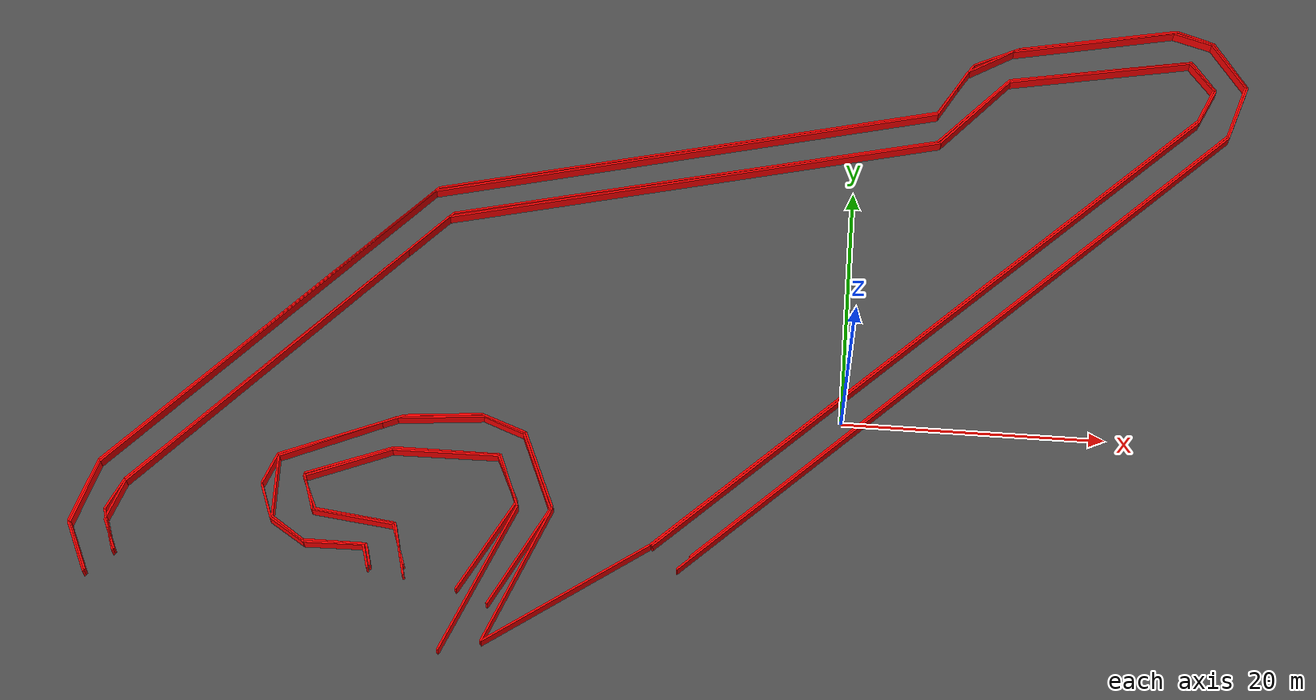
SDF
<sdf version="1.6">
 <world name="track_world">
  <model name="ground_plane">
   <static>true</static>
   <link name="link">
    <collision name="collision">
     <geometry><plane><normal>0 0 1</normal><size>1000 1000</size></plane></geometry>
    </collision>
    <visual name="visual">
     <geometry><plane><normal>0 0 1</normal><size>1000 1000</size></plane></geometry>
     <material><ambient>0.3 0.3 0.3 1</ambient><diffuse>0.3 0.3 0.3 1</diffuse></material>
    </visual>
   </link>
  </model>
  <model name="wall_0">
   <static>true</static>
   <pose>27.159355830790837 36.11916817799599 0.5 0 0 2.8273607545054484</pose>
   <link name="link">
    <visual name="visual">
     <geometry><box><size>3.1721261090316166 0.15 1.0</size></box></geometry>
     <material><ambient>1 0 0 1</ambient><diffuse>1 0 0 1</diffuse></material>
    </visual>
    <collision name="collision">
     <geometry><box><size>3.1721261090316166 0.15 1.0</size></box></geometry>
    </collision>
   </link>
  </model>
  <model name="wall_1">
   <static>true</static>
   <pose>19.27796583079084 35.327258177995986 0.5 0 0 -2.94305943780296</pose>
   <link name="link">
    <visual name="visual">
     <geometry><box><size>13.001366777335367 0.15 1.0</size></box></geometry>
     <material><ambient>1 0 0 1</ambient><diffuse>1 0 0 1</diffuse></material>
    </visual>
    <collision name="collision">
     <geometry><box><size>13.001366777335367 0.15 1.0</size></box></geometry>
    </collision>
   </link>
  </model>
  <model name="wall_2">
   <static>true</static>
   <pose>11.057185830790843 33.140078177995974 0.5 0 0 -2.6861415823389008</pose>
   <link name="link">
    <visual name="visual">
     <geometry><box><size>4.11505785412551 0.15 1.0</size></box></geometry>
     <material><ambient>1 0 0 1</ambient><diffuse>1 0 0 1</diffuse></material>
    </visual>
    <collision name="collision"><geometry><box><size>4.11505785412551 0.15 1.0</size></box></geometry></collision>
   </link>
  </model>
  <model name="wall_3">
   <static>true</static>
   <pose>7.814125830790843 29.897018177995974 0.5 0 0 -2.10884053462052</pose>
   <link name="link">
    <visual name="visual">
     <geometry><box><size>5.445407567225796 0.15 1.0</size></box></geometry>
     <material><ambient>1 0 0 1</ambient><diffuse>1 0 0 1</diffuse></material>
    </visual>
    <collision name="collision">
     <geometry><box><size>5.445407567225796 0.15 1.0</size></box></geometry>
    </collision>
   </link>
  </model>
  <model name="wall_4">
   <static>true</static>
   <pose>-13.190344169209155 22.69440817799598 0.5 0 0 -2.8984247625897464</pose>
   <link name="link">
    <visual name="visual">
     <geometry><box><size>40.40717562552968 0.15 1.0</size></box></geometry>
     <material><ambient>1 0 0 1</ambient><diffuse>1 0 0 1</diffuse></material>
    </visual>
    <collision name="collision">
     <geometry><box><size>40.40717562552968 0.15 1.0</size></box></geometry>
    </collision>
   </link>
  </model>
  <model name="wall_5">
   <static>true</static>
   <pose>-44.338804169209155 5.234678177995988 0.5 0 0 -2.3124723715907574</pose>
   <link name="link">
    <visual name="visual">
     <geometry><box><size>34.163844805126956 0.15 1.0</size></box></geometry>
     <material><ambient>1 0 0 1</ambient><diffuse>1 0 0 1</diffuse></material>
    </visual>
    <collision name="collision">
     <geometry><box><size>34.163844805126956 0.15 1.0</size></box></geometry>
    </collision>
   </link>
  </model>
  <model name="wall_6">
   <static>true</static>
   <pose>-56.632264169209165 -9.924741822004016 0.5 0 0 -1.8568477685122147</pose>
   <link name="link">
    <visual name="visual">
     <geometry><box><size>5.345783219847218 0.15 1.0</size></box></geometry>
     <material><ambient>1 0 0 1</ambient><diffuse>1 0 0 1</diffuse></material>
    </visual>
    <collision name="collision">
     <geometry><box><size>5.345783219847218 0.15 1.0</size></box></geometry>
    </collision>
   </link>
  </model>
  <model name="wall_7">
   <static>true</static>
   <pose>-56.48142416920916 -14.449941822004014 0.5 0 0 -1.1383885512243563</pose>
   <link name="link">
    <visual name="visual">
     <geometry><box><size>4.319400258369202 0.15 1.0</size></box></geometry>
     <material><ambient>1 0 0 1</ambient><diffuse>1 0 0 1</diffuse></material>
    </visual>
    <collision name="collision">
     <geometry><box><size>4.319400258369202 0.15 1.0</size></box></geometry>
    </collision>
   </link>
  </model>
  <model name="wall_26">
   <static>true</static>
   <pose>-32.42244416920916 -12.941541822004012 0.5 0 0 1.8244704229335402</pose>
   <link name="link">
    <visual name="visual">
     <geometry><box><size>4.207327531438446 0.15 1.0</size></box></geometry>
     <material><ambient>1 0 0 1</ambient><diffuse>1 0 0 1</diffuse></material>
    </visual>
    <collision name="collision">
     <geometry><box><size>4.207327531438446 0.15 1.0</size></box></geometry>
    </collision>
   </link>
  </model>
  <model name="wall_27">
   <static>true</static>
   <pose>-36.00489416920916 -10.528101822004018 0.5 0 0 3.0187574147118985</pose>
   <link name="link">
    <visual name="visual">
     <geometry><box><size>6.155399499658817 0.15 1.0</size></box></geometry>
     <material><ambient>1 0 0 1</ambient><diffuse>1 0 0 1</diffuse></material>
    </visual>
    <collision name="collision">
     <geometry><box><size>6.155399499658817 0.15 1.0</size></box></geometry>
    </collision>
   </link>
  </model>
  <model name="wall_28">
   <static>true</static>
   <pose>-39.662764169209154 -8.868861822004014 0.5 0 0 2.01063890961063</pose>
   <link name="link">
    <visual name="visual">
     <geometry><box><size>2.834026301359966 0.15 1.0</size></box></geometry>
     <material><ambient>1 0 0 1</ambient><diffuse>1 0 0 1</diffuse></material>
    </visual>
    <collision name="collision">
     <geometry><box><size>2.834026301359966 0.15 1.0</size></box></geometry>
    </collision>
   </link>
  </model>
  <model name="wall_29">
   <static>true</static>
   <pose>-37.060774169209154 -6.266871822004013 0.5 0 0 0.3906070436976856</pose>
   <link name="link">
    <visual name="visual">
     <geometry><box><size>6.932899146821619 0.15 1.0</size></box></geometry>
     <material><ambient>1 0 0 1</ambient><diffuse>1 0 0 1</diffuse></material>
    </visual>
    <collision name="collision">
     <geometry><box><size>6.932899146821619 0.15 1.0</size></box></geometry>
    </collision>
   </link>
  </model>
  <model name="wall_30">
   <static>true</static>
   <pose>-29.820454169209157 -4.909311822004014 0.5 0 0 0.009345522307490922</pose>
   <link name="link">
    <visual name="visual">
     <geometry><box><size>8.070292422211233 0.15 1.0</size></box></geometry>
     <material><ambient>1 0 0 1</ambient><diffuse>1 0 0 1</diffuse></material>
    </visual>
    <collision name="collision">
     <geometry><box><size>8.070292422211233 0.15 1.0</size></box></geometry>
    </collision>
   </link>
  </model>
  <model name="wall_31">
   <static>true</static>
   <pose>-24.91815416920916 -6.681681822004009 0.5 0 0 -1.1239538583091344</pose>
   <link name="link">
    <visual name="visual">
     <geometry><box><size>4.014299906733422 0.15 1.0</size></box></geometry>
     <material><ambient>1 0 0 1</ambient><diffuse>1 0 0 1</diffuse></material>
    </visual>
    <collision name="collision">
     <geometry><box><size>4.014299906733422 0.15 1.0</size></box></geometry>
    </collision>
   </link>
  </model>
  <model name="wall_32">
   <static>true</static>
   <pose>-25.974034169209162 -12.149631822004011 0.5 0 0 -2.0548492664822398</pose>
   <link name="link">
    <visual name="visual">
     <geometry><box><size>8.26528877680629 0.15 1.0</size></box></geometry>
     <material><ambient>1 0 0 1</ambient><diffuse>1 0 0 1</diffuse></material>
    </visual>
    <collision name="collision"><geometry><box><size>8.26528877680629 0.15 1.0</size></box></geometry></collision>
   </link>
  </model>
  <model name="wall_37">
   <static>true</static>
   <pose>9.02084583079084 6.893918177995985 0.5 0 0 0.7677910859479851</pose>
   <link name="link">
    <visual name="visual">
     <geometry><box><size>57.55198350966194 0.15 1.0</size></box></geometry>
     <material><ambient>1 0 0 1</ambient><diffuse>1 0 0 1</diffuse></material>
    </visual>
    <collision name="collision">
     <geometry><box><size>57.55198350966194 0.15 1.0</size></box></geometry>
    </collision>
   </link>
  </model>
  <model name="wall_38">
   <static>true</static>
   <pose>30.515545830790835 29.25594817799599 0.5 0 0 1.249045772398257</pose>
   <link name="link">
    <visual name="visual">
     <geometry><box><size>5.008478603727887 0.15 1.0</size></box></geometry>
     <material><ambient>1 0 0 1</ambient><diffuse>1 0 0 1</diffuse></material>
    </visual>
    <collision name="collision">
     <geometry><box><size>5.008478603727887 0.15 1.0</size></box></geometry>
    </collision>
   </link>
  </model>
  <model name="wall_39">
   <static>true</static>
   <pose>29.987605830790834 33.630308177995985 0.5 0 0 2.1544321458720583</pose>
   <link name="link">
    <visual name="visual">
     <geometry><box><size>4.790209139233882 0.15 1.0</size></box></geometry>
     <material><ambient>1 0 0 1</ambient><diffuse>1 0 0 1</diffuse></material>
    </visual>
    <collision name="collision">
     <geometry><box><size>4.790209139233882 0.15 1.0</size></box></geometry>
    </collision>
   </link>
  </model>
  <model name="wall_40">
   <static>true</static>
   <pose>29.83676583079084 33.630308177995985 0.5 0 0 -0.9693416199346254</pose>
   <link name="link">
    <visual name="visual">
     <geometry><box><size>4.665079088975899 0.15 1.0</size></box></geometry>
     <material><ambient>1 0 0 1</ambient><diffuse>1 0 0 1</diffuse></material>
    </visual>
    <collision name="collision">
     <geometry><box><size>4.665079088975899 0.15 1.0</size></box></geometry>
    </collision>
   </link>
  </model>
  <model name="wall_41">
   <static>true</static>
   <pose>30.402415830790844 29.369078177995974 0.5 0 0 -1.8828384483574288</pose>
   <link name="link">
    <visual name="visual">
     <geometry><box><size>4.913310558228534 0.15 1.0</size></box></geometry>
     <material><ambient>1 0 0 1</ambient><diffuse>1 0 0 1</diffuse></material>
    </visual>
    <collision name="collision">
     <geometry><box><size>4.913310558228534 0.15 1.0</size></box></geometry>
    </collision>
   </link>
  </model>
  <model name="wall_42">
   <static>true</static>
   <pose>9.435655830790843 7.49727817799598 0.5 0 0 -2.3732706290907037</pose>
   <link name="link">
    <visual name="visual">
     <geometry><box><size>56.21800931523634 0.15 1.0</size></box></geometry>
     <material><ambient>1 0 0 1</ambient><diffuse>1 0 0 1</diffuse></material>
    </visual>
    <collision name="collision">
     <geometry><box><size>56.21800931523634 0.15 1.0</size></box></geometry>
    </collision>
   </link>
  </model>
  <model name="wall_46">
   <static>true</static>
   <pose>-26.35113416920916 -14.751621822004012 0.5 0 0 1.1869787035063275</pose>
   <link name="link">
    <visual name="visual">
     <geometry><box><size>12.688728580988732 0.15 1.0</size></box></geometry>
     <material><ambient>1 0 0 1</ambient><diffuse>1 0 0 1</diffuse></material>
    </visual>
    <collision name="collision">
     <geometry><box><size>12.688728580988732 0.15 1.0</size></box></geometry>
    </collision>
   </link>
  </model>
  <model name="wall_47">
   <static>true</static>
   <pose>-24.805024169209155 -6.832521822004011 0.5 0 0 1.9576720445259248</pose>
   <link name="link">
    <visual name="visual">
     <geometry><box><size>4.397703919092316 0.15 1.0</size></box></geometry>
     <material><ambient>1 0 0 1</ambient><diffuse>1 0 0 1</diffuse></material>
    </visual>
    <collision name="collision">
     <geometry><box><size>4.397703919092316 0.15 1.0</size></box></geometry>
    </collision>
   </link>
  </model>
  <model name="wall_48">
   <static>true</static>
   <pose>-29.70732416920916 -4.796181822004016 0.5 0 0 3.141592653589793</pose>
   <link name="link">
    <visual name="visual">
     <geometry><box><size>8.14536000000001 0.15 1.0</size></box></geometry>
     <material><ambient>1 0 0 1</ambient><diffuse>1 0 0 1</diffuse></material>
    </visual>
    <collision name="collision"><geometry><box><size>8.14536000000001 0.15 1.0</size></box></geometry></collision>
   </link>
  </model>
  <model name="wall_49">
   <static>true</static>
   <pose>-37.023064169209164 -6.078321822004014 0.5 0 0 -2.76510231914327</pose>
   <link name="link">
    <visual name="visual">
     <geometry><box><size>6.974617163171029 0.15 1.0</size></box></geometry>
     <material><ambient>1 0 0 1</ambient><diffuse>1 0 0 1</diffuse></material>
    </visual>
    <collision name="collision">
     <geometry><box><size>6.974617163171029 0.15 1.0</size></box></geometry>
    </collision>
   </link>
  </model>
  <model name="wall_50">
   <static>true</static>
   <pose>-39.77589416920915 -8.793441822004013 0.5 0 0 -1.2411719193741537</pose>
   <link name="link">
    <visual name="visual">
     <geometry><box><size>3.0290309561310216 0.15 1.0</size></box></geometry>
     <material><ambient>1 0 0 1</ambient><diffuse>1 0 0 1</diffuse></material>
    </visual>
    <collision name="collision">
     <geometry><box><size>3.0290309561310216 0.15 1.0</size></box></geometry>
    </collision>
   </link>
  </model>
  <model name="wall_51">
   <static>true</static>
   <pose>-36.19344416920916 -10.603521822004012 0.5 0 0 -0.12135200057076334</pose>
   <link name="link">
    <visual name="visual">
     <geometry><box><size>6.230258080818157 0.15 1.0</size></box></geometry>
     <material><ambient>1 0 0 1</ambient><diffuse>1 0 0 1</diffuse></material>
    </visual>
    <collision name="collision">
     <geometry><box><size>6.230258080818157 0.15 1.0</size></box></geometry>
    </collision>
   </link>
  </model>
  <model name="wall_52">
   <static>true</static>
   <pose>-32.53557416920916 -12.564441822004014 0.5 0 0 -1.227772386374195</pose>
   <link name="link">
    <visual name="visual">
     <geometry><box><size>3.363596714768289 0.15 1.0</size></box></geometry>
     <material><ambient>1 0 0 1</ambient><diffuse>1 0 0 1</diffuse></material>
    </visual>
    <collision name="collision">
     <geometry><box><size>3.363596714768289 0.15 1.0</size></box></geometry>
    </collision>
   </link>
  </model>
  <model name="wall_68">
   <static>true</static>
   <pose>-56.368294169209165 -14.412231822004017 0.5 0 0 2.009655625758402</pose>
   <link name="link">
    <visual name="visual">
     <geometry><box><size>4.08244496006989 0.15 1.0</size></box></geometry>
     <material><ambient>1 0 0 1</ambient><diffuse>1 0 0 1</diffuse></material>
    </visual>
    <collision name="collision"><geometry><box><size>4.08244496006989 0.15 1.0</size></box></geometry></collision>
   </link>
  </model>
  <model name="wall_69">
   <static>true</static>
   <pose>-56.51913416920916 -10.037871822004014 0.5 0 0 1.2944690518198312</pose>
   <link name="link">
    <visual name="visual">
     <geometry><box><size>5.2523952193261305 0.15 1.0</size></box></geometry>
     <material><ambient>1 0 0 1</ambient><diffuse>1 0 0 1</diffuse></material>
    </visual>
    <collision name="collision">
     <geometry><box><size>5.2523952193261305 0.15 1.0</size></box></geometry>
    </collision>
   </link>
  </model>
  <model name="wall_70">
   <static>true</static>
   <pose>-44.414224169209156 5.008418177995985 0.5 0 0 0.8326815064915635</pose>
   <link name="link">
    <visual name="visual">
     <geometry><box><size>33.84904719337312 0.15 1.0</size></box></geometry>
     <material><ambient>1 0 0 1</ambient><diffuse>1 0 0 1</diffuse></material>
    </visual>
    <collision name="collision">
     <geometry><box><size>33.84904719337312 0.15 1.0</size></box></geometry>
    </collision>
   </link>
  </model>
  <model name="wall_71">
   <static>true</static>
   <pose>-13.303474169209153 22.468148177995985 0.5 0 0 0.2454285056516268</pose>
   <link name="link">
    <visual name="visual">
     <geometry><box><size>40.66320201012213 0.15 1.0</size></box></geometry>
     <material><ambient>1 0 0 1</ambient><diffuse>1 0 0 1</diffuse></material>
    </visual>
    <collision name="collision">
     <geometry><box><size>40.66320201012213 0.15 1.0</size></box></geometry>
    </collision>
   </link>
  </model>
  <model name="wall_72">
   <static>true</static>
   <pose>7.587865830790847 29.482208177995986 0.5 0 0 1.0575440539286356</pose>
   <link name="link">
    <visual name="visual">
     <geometry><box><size>4.761624841417055 0.15 1.0</size></box></geometry>
     <material><ambient>1 0 0 1</ambient><diffuse>1 0 0 1</diffuse></material>
    </visual>
    <collision name="collision">
     <geometry><box><size>4.761624841417055 0.15 1.0</size></box></geometry>
    </collision>
   </link>
  </model>
  <model name="wall_73">
   <static>true</static>
   <pose>10.566955830790846 32.64984817799599 0.5 0 0 0.543477594713046</pose>
   <link name="link">
    <visual name="visual">
     <geometry><box><size>4.229576193662911 0.15 1.0</size></box></geometry>
     <material><ambient>1 0 0 1</ambient><diffuse>1 0 0 1</diffuse></material>
    </visual>
    <collision name="collision">
     <geometry><box><size>4.229576193662911 0.15 1.0</size></box></geometry>
    </collision>
   </link>
  </model>
  <model name="wall_74">
   <static>true</static>
   <pose>18.900865830790842 35.10099817799599 0.5 0 0 0.20516454893532557</pose>
   <link name="link">
    <visual name="visual">
     <geometry><box><size>13.327164292901912 0.15 1.0</size></box></geometry>
     <material><ambient>1 0 0 1</ambient><diffuse>1 0 0 1</diffuse></material>
    </visual>
    <collision name="collision">
     <geometry><box><size>13.327164292901912 0.15 1.0</size></box></geometry>
    </collision>
   </link>
  </model>
  <model name="wall_75">
   <static>true</static>
   <pose>26.970805830790837 36.00603817799599 0.5 0 0 -0.284730438522708</pose>
   <link name="link">
    <visual name="visual">
     <geometry><box><size>3.2219438123592345 0.15 1.0</size></box></geometry>
     <material><ambient>1 0 0 1</ambient><diffuse>1 0 0 1</diffuse></material>
    </visual>
    <collision name="collision">
     <geometry><box><size>3.2219438123592345 0.15 1.0</size></box></geometry>
    </collision>
   </link>
  </model>
  <model name="wall_76">
   <static>true</static>
   <pose>19.504225830790837 32.38587817799599 0.5 0 0 -2.9590328004588855</pose>
   <link name="link">
    <visual name="visual">
     <geometry><box><size>14.955426581157763 0.15 1.0</size></box></geometry>
     <material><ambient>1 0 0 1</ambient><diffuse>1 0 0 1</diffuse></material>
    </visual>
    <collision name="collision">
     <geometry><box><size>14.955426581157763 0.15 1.0</size></box></geometry>
    </collision>
   </link>
  </model>
  <model name="wall_77">
   <static>true</static>
   <pose>9.322525830790838 27.936098177995987 0.5 0 0 -2.311638012056135</pose>
   <link name="link">
    <visual name="visual">
     <geometry><box><size>8.381127034212037 0.15 1.0</size></box></geometry>
     <material><ambient>1 0 0 1</ambient><diffuse>1 0 0 1</diffuse></material>
    </visual>
    <collision name="collision">
     <geometry><box><size>8.381127034212037 0.15 1.0</size></box></geometry>
    </collision>
   </link>
  </model>
  <model name="wall_78">
   <static>true</static>
   <pose>-12.436144169209157 20.24325817799599 0.5 0 0 -2.903186665767688</pose>
   <link name="link">
    <visual name="visual">
     <geometry><box><size>38.96288006607314 0.15 1.0</size></box></geometry>
     <material><ambient>1 0 0 1</ambient><diffuse>1 0 0 1</diffuse></material>
    </visual>
    <collision name="collision">
     <geometry><box><size>38.96288006607314 0.15 1.0</size></box></geometry>
    </collision>
   </link>
  </model>
  <model name="wall_79">
   <static>true</static>
   <pose>-42.528724169209156 3.424598177995989 0.5 0 0 -2.3110638651375957</pose>
   <link name="link">
    <visual name="visual">
     <geometry><box><size>33.098297074453846 0.15 1.0</size></box></geometry>
     <material><ambient>1 0 0 1</ambient><diffuse>1 0 0 1</diffuse></material>
    </visual>
    <collision name="collision">
     <geometry><box><size>33.098297074453846 0.15 1.0</size></box></geometry>
    </collision>
   </link>
  </model>
  <model name="wall_80">
   <static>true</static>
   <pose>-54.25653416920916 -10.075581822004011 0.5 0 0 -1.9862884227357887</pose>
   <link name="link">
    <visual name="visual">
     <geometry><box><size>2.8027435859171974 0.15 1.0</size></box></geometry>
     <material><ambient>1 0 0 1</ambient><diffuse>1 0 0 1</diffuse></material>
    </visual>
    <collision name="collision">
     <geometry><box><size>2.8027435859171974 0.15 1.0</size></box></geometry>
    </collision>
   </link>
  </model>
  <model name="wall_81">
   <static>true</static>
   <pose>-54.25653416920916 -12.97925182200401 0.5 0 0 -1.2351577764672865</pose>
   <link name="link">
    <visual name="visual">
     <geometry><box><size>3.434716560882427 0.15 1.0</size></box></geometry>
     <material><ambient>1 0 0 1</ambient><diffuse>1 0 0 1</diffuse></material>
    </visual>
    <collision name="collision">
     <geometry><box><size>3.434716560882427 0.15 1.0</size></box></geometry>
    </collision>
   </link>
  </model>
  <model name="wall_98">
   <static>true</static>
   <pose>-34.685044169209164 -13.544901822004014 0.5 0 0 1.8370483759458223</pose>
   <link name="link">
    <visual name="visual">
     <geometry><box><size>1.7198406112195366 0.15 1.0</size></box></geometry>
     <material><ambient>1 0 0 1</ambient><diffuse>1 0 0 1</diffuse></material>
    </visual>
    <collision name="collision">
     <geometry><box><size>1.7198406112195366 0.15 1.0</size></box></geometry>
    </collision>
   </link>
  </model>
  <model name="wall_99">
   <static>true</static>
   <pose>-37.287034169209164 -12.715281822004016 0.5 0 0 3.141592653589793</pose>
   <link name="link">
    <visual name="visual">
     <geometry><box><size>4.751460000000002 0.15 1.0</size></box></geometry>
     <material><ambient>1 0 0 1</ambient><diffuse>1 0 0 1</diffuse></material>
    </visual>
    <collision name="collision">
     <geometry><box><size>4.751460000000002 0.15 1.0</size></box></geometry>
    </collision>
   </link>
  </model>
  <model name="wall_100">
   <static>true</static>
   <pose>-40.94490416920916 -11.847951822004013 0.5 0 0 2.546833396106438</pose>
   <link name="link">
    <visual name="visual">
     <geometry><box><size>3.095896838397559 0.15 1.0</size></box></geometry>
     <material><ambient>1 0 0 1</ambient><diffuse>1 0 0 1</diffuse></material>
    </visual>
    <collision name="collision">
     <geometry><box><size>3.095896838397559 0.15 1.0</size></box></geometry>
    </collision>
   </link>
  </model>
  <model name="wall_101">
   <static>true</static>
   <pose>-42.30246416920916 -8.529471822004012 0.5 0 0 1.6015558528653664</pose>
   <link name="link">
    <visual name="visual">
     <geometry><box><size>4.904620066386383 0.15 1.0</size></box></geometry>
     <material><ambient>1 0 0 1</ambient><diffuse>1 0 0 1</diffuse></material>
    </visual>
    <collision name="collision">
     <geometry><box><size>4.904620066386383 0.15 1.0</size></box></geometry>
    </collision>
   </link>
  </model>
  <model name="wall_102">
   <static>true</static>
   <pose>-38.116654169209156 -4.192821822004014 0.5 0 0 0.41658094568479526</pose>
   <link name="link">
    <visual name="visual">
     <geometry><box><size>9.319483110752444 0.15 1.0</size></box></geometry>
     <material><ambient>1 0 0 1</ambient><diffuse>1 0 0 1</diffuse></material>
    </visual>
    <collision name="collision">
     <geometry><box><size>9.319483110752444 0.15 1.0</size></box></geometry>
    </collision>
   </link>
  </model>
  <model name="wall_103">
   <static>true</static>
   <pose>-30.536944169209157 -2.0056418220040158 0.5 0 0 0.09065988720074435</pose>
   <link name="link">
    <visual name="visual">
     <geometry><box><size>6.664329023330107 0.15 1.0</size></box></geometry>
     <material><ambient>1 0 0 1</ambient><diffuse>1 0 0 1</diffuse></material>
    </visual>
    <collision name="collision">
     <geometry><box><size>6.664329023330107 0.15 1.0</size></box></geometry>
    </collision>
   </link>
  </model>
  <model name="wall_104">
   <static>true</static>
   <pose>-25.63464416920916 -2.3073218220040133 0.5 0 0 -0.36397895650964224</pose>
   <link name="link">
    <visual name="visual">
     <geometry><box><size>3.3897074103821887 0.15 1.0</size></box></geometry>
     <material><ambient>1 0 0 1</ambient><diffuse>1 0 0 1</diffuse></material>
    </visual>
    <collision name="collision">
     <geometry><box><size>3.3897074103821887 0.15 1.0</size></box></geometry>
    </collision>
   </link>
  </model>
  <model name="wall_105">
   <static>true</static>
   <pose>-22.76868416920916 -5.927481822004012 0.5 0 0 -1.168925679354439</pose>
   <link name="link">
    <visual name="visual">
     <geometry><box><size>6.555902750834559 0.15 1.0</size></box></geometry>
     <material><ambient>1 0 0 1</ambient><diffuse>1 0 0 1</diffuse></material>
    </visual>
    <collision name="collision">
     <geometry><box><size>6.555902750834559 0.15 1.0</size></box></geometry>
    </collision>
   </link>
  </model>
  <model name="wall_106">
   <static>true</static>
   <pose>-23.48517416920916 -12.866121822004011 0.5 0 0 -2.0421066210652437</pose>
   <link name="link">
    <visual name="visual">
     <geometry><box><size>8.803488141072263 0.15 1.0</size></box></geometry>
     <material><ambient>1 0 0 1</ambient><diffuse>1 0 0 1</diffuse></material>
    </visual>
    <collision name="collision">
     <geometry><box><size>8.803488141072263 0.15 1.0</size></box></geometry>
    </collision>
   </link>
  </model>
  <model name="wall_109">
   <static>true</static>
   <pose>6.833665830790842 8.364608177995983 0.5 0 0 0.7666386382444821</pose>
   <link name="link">
    <visual name="visual">
     <geometry><box><size>56.85977775087763 0.15 1.0</size></box></geometry>
     <material><ambient>1 0 0 1</ambient><diffuse>1 0 0 1</diffuse></material>
    </visual>
    <collision name="collision">
     <geometry><box><size>56.85977775087763 0.15 1.0</size></box></geometry>
    </collision>
   </link>
  </model>
  <model name="wall_110">
   <static>true</static>
   <pose>28.026685830790846 29.633048177995974 0.5 0 0 1.1368429574009995</pose>
   <link name="link">
    <visual name="visual">
     <geometry><box><size>3.408116225835027 0.15 1.0</size></box></geometry>
     <material><ambient>1 0 0 1</ambient><diffuse>1 0 0 1</diffuse></material>
    </visual>
    <collision name="collision">
     <geometry><box><size>3.408116225835027 0.15 1.0</size></box></geometry>
    </collision>
   </link>
  </model>
  <model name="wall_111">
   <static>true</static>
   <pose>27.800425830790843 32.461298177995985 0.5 0 0 2.204819046458316</pose>
   <link name="link">
    <visual name="visual">
     <geometry><box><size>3.182866973092051 0.15 1.0</size></box></geometry>
     <material><ambient>1 0 0 1</ambient><diffuse>1 0 0 1</diffuse></material>
    </visual>
    <collision name="collision">
     <geometry><box><size>3.182866973092051 0.15 1.0</size></box></geometry>
    </collision>
   </link>
  </model>
  <model name="wall_112">
   <static>true</static>
   <pose>27.64958583079084 32.461298177995985 0.5 0 0 -0.9075933340888032</pose>
   <link name="link">
    <visual name="visual">
     <geometry><box><size>3.0626463856606216 0.15 1.0</size></box></geometry>
     <material><ambient>1 0 0 1</ambient><diffuse>1 0 0 1</diffuse></material>
    </visual>
    <collision name="collision">
     <geometry><box><size>3.0626463856606216 0.15 1.0</size></box></geometry>
    </collision>
   </link>
  </model>
  <model name="wall_113">
   <static>true</static>
   <pose>27.951265830790845 29.78388817799599 0.5 0 0 -1.981860874184763</pose>
   <link name="link">
    <visual name="visual">
     <geometry><box><size>3.2086756277317723 0.15 1.0</size></box></geometry>
     <material><ambient>1 0 0 1</ambient><diffuse>1 0 0 1</diffuse></material>
    </visual>
    <collision name="collision">
     <geometry><box><size>3.2086756277317723 0.15 1.0</size></box></geometry>
    </collision>
   </link>
  </model>
  <model name="wall_114">
   <static>true</static>
   <pose>6.758245830790841 8.515448177995992 0.5 0 0 -2.3748839026392505</pose>
   <link name="link">
    <visual name="visual">
     <geometry><box><size>57.073060330246896 0.15 1.0</size></box></geometry>
     <material><ambient>1 0 0 1</ambient><diffuse>1 0 0 1</diffuse></material>
    </visual>
    <collision name="collision">
     <geometry><box><size>57.073060330246896 0.15 1.0</size></box></geometry>
    </collision>
   </link>
  </model>
  <model name="wall_115">
   <static>true</static>
   <pose>-19.71417416920916 -15.505821822004016 0.5 0 0 -2.52194594028864</pose>
   <link name="link">
    <visual name="visual">
     <geometry><box><size>14.54511412279738 0.15 1.0</size></box></geometry>
     <material><ambient>1 0 0 1</ambient><diffuse>1 0 0 1</diffuse></material>
    </visual>
    <collision name="collision">
     <geometry><box><size>14.54511412279738 0.15 1.0</size></box></geometry>
    </collision>
   </link>
  </model>
  <model name="wall_116">
   <static>true</static>
   <pose>-23.48517416920916 -14.261391822004015 0.5 0 0 1.1962493546992348</pose>
   <link name="link">
    <visual name="visual">
     <geometry><box><size>11.75052313446512 0.15 1.0</size></box></geometry>
     <material><ambient>1 0 0 1</ambient><diffuse>1 0 0 1</diffuse></material>
    </visual>
    <collision name="collision">
     <geometry><box><size>11.75052313446512 0.15 1.0</size></box></geometry>
    </collision>
   </link>
  </model>
  <model name="wall_117">
   <static>true</static>
   <pose>-22.617844169209164 -5.814351822004014 0.5 0 0 1.9772148294510417</pose>
   <link name="link">
    <visual name="visual">
     <geometry><box><size>6.486558473551285 0.15 1.0</size></box></geometry>
     <material><ambient>1 0 0 1</ambient><diffuse>1 0 0 1</diffuse></material>
    </visual>
    <collision name="collision">
     <geometry><box><size>6.486558473551285 0.15 1.0</size></box></geometry>
    </collision>
   </link>
  </model>
  <model name="wall_118">
   <static>true</static>
   <pose>-25.63464416920916 -2.194191822004015 0.5 0 0 2.787595216757897</pose>
   <link name="link">
    <visual name="visual">
     <geometry><box><size>3.698657086294966 0.15 1.0</size></box></geometry>
     <material><ambient>1 0 0 1</ambient><diffuse>1 0 0 1</diffuse></material>
    </visual>
    <collision name="collision">
     <geometry><box><size>3.698657086294966 0.15 1.0</size></box></geometry>
    </collision>
   </link>
  </model>
  <model name="wall_119">
   <static>true</static>
   <pose>-30.31068416920916 -1.8170918220040164 0.5 0 0 -3.052088835238183</pose>
   <link name="link">
    <visual name="visual">
     <geometry><box><size>5.906402107984188 0.15 1.0</size></box></geometry>
     <material><ambient>1 0 0 1</ambient><diffuse>1 0 0 1</diffuse></material>
    </visual>
    <collision name="collision">
     <geometry><box><size>5.906402107984188 0.15 1.0</size></box></geometry>
    </collision>
   </link>
  </model>
  <model name="wall_120">
   <static>true</static>
   <pose>-37.85268416920916 -4.004271822004014 0.5 0 0 -2.745638067282956</pose>
   <link name="link">
    <visual name="visual">
     <geometry><box><size>9.972851365281644 0.15 1.0</size></box></geometry>
     <material><ambient>1 0 0 1</ambient><diffuse>1 0 0 1</diffuse></material>
    </visual>
    <collision name="collision">
     <geometry><box><size>9.972851365281644 0.15 1.0</size></box></geometry>
    </collision>
   </link>
  </model>
  <model name="wall_121">
   <static>true</static>
   <pose>-42.90582416920916 -7.171911822004013 0.5 0 0 -1.9195673303788032</pose>
   <link name="link">
    <visual name="visual">
     <geometry><box><size>2.6483054017994245 0.15 1.0</size></box></geometry>
     <material><ambient>1 0 0 1</ambient><diffuse>1 0 0 1</diffuse></material>
    </visual>
    <collision name="collision">
     <geometry><box><size>2.6483054017994245 0.15 1.0</size></box></geometry>
    </collision>
   </link>
  </model>
  <model name="wall_122">
   <static>true</static>
   <pose>-42.83040416920916 -9.773901822004014 0.5 0 0 -1.1999050379822336</pose>
   <link name="link">
    <visual name="visual">
     <geometry><box><size>2.91320428202349 0.15 1.0</size></box></geometry>
     <material><ambient>1 0 0 1</ambient><diffuse>1 0 0 1</diffuse></material>
    </visual>
    <collision name="collision"><geometry><box><size>2.91320428202349 0.15 1.0</size></box></geometry></collision>
   </link>
  </model>
  <model name="wall_123">
   <static>true</static>
   <pose>-40.94490416920916 -11.998791822004016 0.5 0 0 -0.5685245477310416</pose>
   <link name="link">
    <visual name="visual">
     <geometry><box><size>3.221943812359243 0.15 1.0</size></box></geometry>
     <material><ambient>1 0 0 1</ambient><diffuse>1 0 0 1</diffuse></material>
    </visual>
    <collision name="collision">
     <geometry><box><size>3.221943812359243 0.15 1.0</size></box></geometry>
    </collision>
   </link>
  </model>
  <model name="wall_124">
   <static>true</static>
   <pose>-37.36245416920916 -12.828411822004014 0.5 0 0 0.01694752980640675</pose>
   <link name="link">
    <visual name="visual">
     <geometry><box><size>4.450419106646029 0.15 1.0</size></box></geometry>
     <material><ambient>1 0 0 1</ambient><diffuse>1 0 0 1</diffuse></material>
    </visual>
    <collision name="collision">
     <geometry><box><size>4.450419106646029 0.15 1.0</size></box></geometry>
    </collision>
   </link>
  </model>
  <model name="wall_125">
   <static>true</static>
   <pose>-34.873594169209156 -13.69574182200401 0.5 0 0 -1.287002217586568</pose>
   <link name="link">
    <visual name="visual">
     <geometry><box><size>1.8854999999999995 0.15 1.0</size></box></geometry>
     <material><ambient>1 0 0 1</ambient><diffuse>1 0 0 1</diffuse></material>
    </visual>
    <collision name="collision">
     <geometry><box><size>1.8854999999999995 0.15 1.0</size></box></geometry>
    </collision>
   </link>
  </model>
  <model name="wall_142">
   <static>true</static>
   <pose>-54.14340416920916 -13.280931822004007 0.5 0 0 1.9949907346986613</pose>
   <link name="link">
    <visual name="visual">
     <geometry><box><size>2.565388877889664 0.15 1.0</size></box></geometry>
     <material><ambient>1 0 0 1</ambient><diffuse>1 0 0 1</diffuse></material>
    </visual>
    <collision name="collision">
     <geometry><box><size>2.565388877889664 0.15 1.0</size></box></geometry>
    </collision>
   </link>
  </model>
  <model name="wall_143">
   <static>true</static>
   <pose>-54.14340416920916 -10.528101822004011 0.5 0 0 1.249045772398255</pose>
   <link name="link">
    <visual name="visual">
     <geometry><box><size>3.3389857358185786 0.15 1.0</size></box></geometry>
     <material><ambient>1 0 0 1</ambient><diffuse>1 0 0 1</diffuse></material>
    </visual>
    <collision name="collision">
     <geometry><box><size>3.3389857358185786 0.15 1.0</size></box></geometry>
    </collision>
   </link>
  </model>
  <model name="wall_144">
   <static>true</static>
   <pose>-42.67956416920916 3.1606281779959886 0.5 0 0 0.8360911928946698</pose>
   <link name="link">
    <visual name="visual">
     <geometry><box><size>32.62653857938964 0.15 1.0</size></box></geometry>
     <material><ambient>1 0 0 1</ambient><diffuse>1 0 0 1</diffuse></material>
    </visual>
    <collision name="collision">
     <geometry><box><size>32.62653857938964 0.15 1.0</size></box></geometry>
    </collision>
   </link>
  </model>
  <model name="wall_145">
   <static>true</static>
   <pose>-12.511564169209159 20.016998177995987 0.5 0 0 0.24220858710962023</pose>
   <link name="link">
    <visual name="visual">
     <geometry><box><size>39.62070380705521 0.15 1.0</size></box></geometry>
     <material><ambient>1 0 0 1</ambient><diffuse>1 0 0 1</diffuse></material>
    </visual>
    <collision name="collision">
     <geometry><box><size>39.62070380705521 0.15 1.0</size></box></geometry>
    </collision>
   </link>
  </model>
  <model name="wall_146">
   <static>true</static>
   <pose>9.435655830790836 27.82296817799599 0.5 0 0 0.8441539861131725</pose>
   <link name="link">
    <visual name="visual">
     <geometry><box><size>8.173593568192643 0.15 1.0</size></box></geometry>
     <material><ambient>1 0 0 1</ambient><diffuse>1 0 0 1</diffuse></material>
    </visual>
    <collision name="collision">
     <geometry><box><size>8.173593568192643 0.15 1.0</size></box></geometry>
    </collision>
   </link>
  </model>
  <model name="wall_147">
   <static>true</static>
   <pose>19.428805830790836 32.27274817799599 0.5 0 0 0.1894116975540134</pose>
   <link name="link">
    <visual name="visual">
     <geometry><box><size>14.821133432204165 0.15 1.0</size></box></geometry>
     <material><ambient>1 0 0 1</ambient><diffuse>1 0 0 1</diffuse></material>
    </visual>
    <collision name="collision">
     <geometry><box><size>14.821133432204165 0.15 1.0</size></box></geometry>
    </collision>
   </link>
  </model>
 </world>
</sdf>
